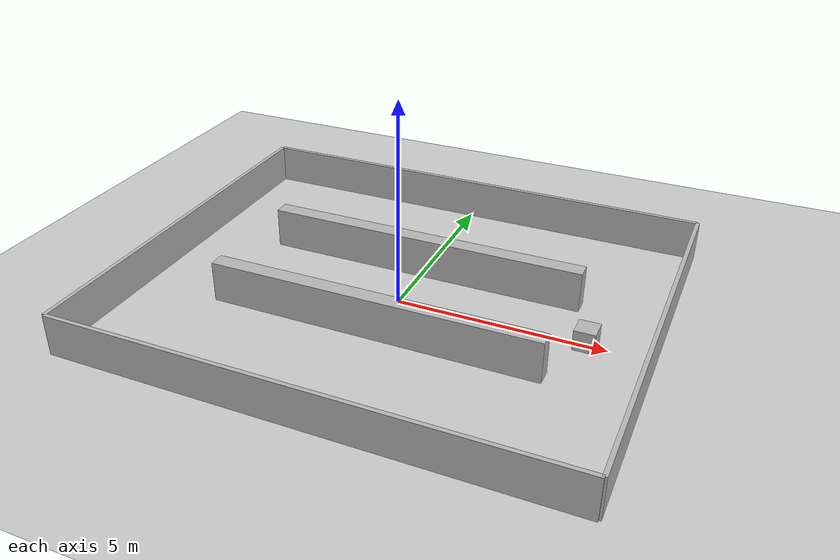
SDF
<?xml version="1.0" ?>
<!--
  udm-bench: small_warehouse
  a 12×10 m warehouse-style world with parallel shelf rows,
  used by the single_tb3_warehouse_nav and single_tb3_dynamic_obstacles
  scenarios.
-->
<sdf version="1.7">
  <world name="small_warehouse">
    <physics type="ode">
      <max_step_size>0.001</max_step_size>
      <real_time_factor>1.0</real_time_factor>
      <real_time_update_rate>1000</real_time_update_rate>
    </physics>

    <include><uri>model://sun</uri></include>
    <include><uri>model://ground_plane</uri></include>

    <!-- Perimeter walls (12 m × 10 m) -->
    <model name="wall_north">
      <static>true</static>
      <pose>0 5 0.5 0 0 0</pose>
      <link name="link">
        <collision name="c"><geometry><box><size>12 0.1 1.0</size></box></geometry></collision>
        <visual name="v"><geometry><box><size>12 0.1 1.0</size></box></geometry></visual>
      </link>
    </model>
    <model name="wall_south">
      <static>true</static>
      <pose>0 -5 0.5 0 0 0</pose>
      <link name="link">
        <collision name="c"><geometry><box><size>12 0.1 1.0</size></box></geometry></collision>
        <visual name="v"><geometry><box><size>12 0.1 1.0</size></box></geometry></visual>
      </link>
    </model>
    <model name="wall_east">
      <static>true</static>
      <pose>6 0 0.5 0 0 0</pose>
      <link name="link">
        <collision name="c"><geometry><box><size>0.1 10 1.0</size></box></geometry></collision>
        <visual name="v"><geometry><box><size>0.1 10 1.0</size></box></geometry></visual>
      </link>
    </model>
    <model name="wall_west">
      <static>true</static>
      <pose>-6 0 0.5 0 0 0</pose>
      <link name="link">
        <collision name="c"><geometry><box><size>0.1 10 1.0</size></box></geometry></collision>
        <visual name="v"><geometry><box><size>0.1 10 1.0</size></box></geometry></visual>
      </link>
    </model>

    <!-- Two parallel shelf rows -->
    <model name="shelf_row_1">
      <static>true</static>
      <pose>0 1.5 0.5 0 0 0</pose>
      <link name="link">
        <collision name="c"><geometry><box><size>8 0.4 1.0</size></box></geometry></collision>
        <visual name="v"><geometry><box><size>8 0.4 1.0</size></box></geometry></visual>
      </link>
    </model>
    <model name="shelf_row_2">
      <static>true</static>
      <pose>0 -1.5 0.5 0 0 0</pose>
      <link name="link">
        <collision name="c"><geometry><box><size>8 0.4 1.0</size></box></geometry></collision>
        <visual name="v"><geometry><box><size>8 0.4 1.0</size></box></geometry></visual>
      </link>
    </model>

    <!-- Map-mismatch target box -->
    <model name="obstacle_box_1">
      <static>true</static>
      <pose>4.5 0 0.25 0 0 0</pose>
      <link name="link">
        <collision name="c"><geometry><box><size>0.5 0.5 0.5</size></box></geometry></collision>
        <visual name="v"><geometry><box><size>0.5 0.5 0.5</size></box></geometry></visual>
      </link>
    </model>
  </world>
</sdf>
